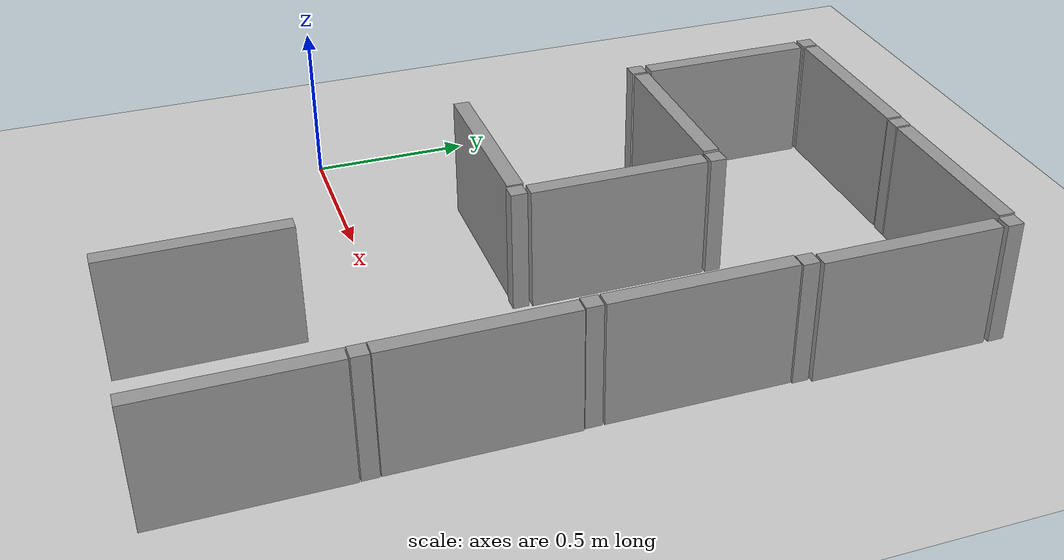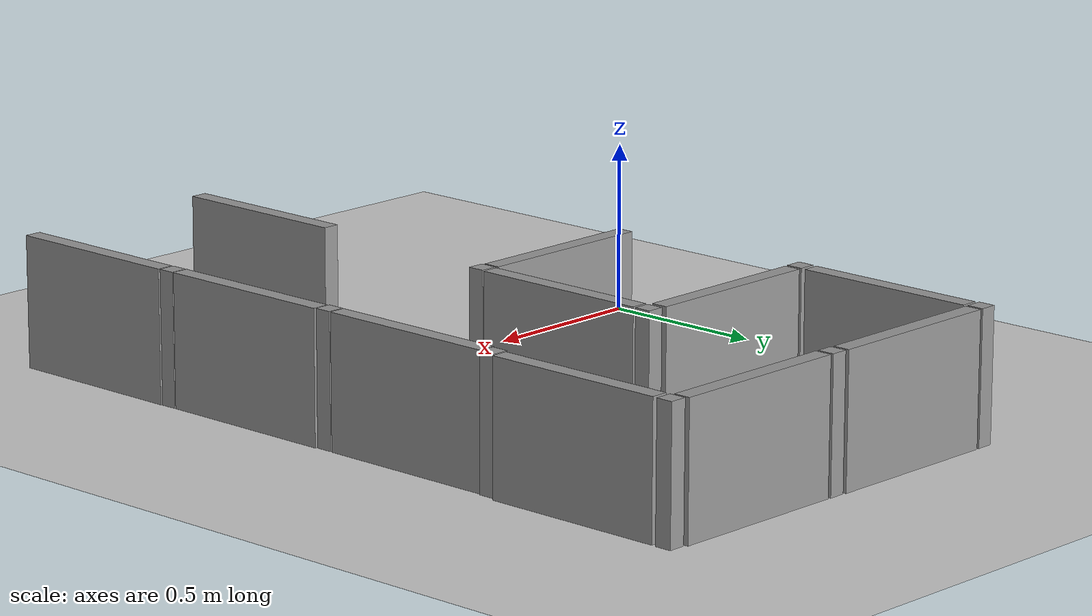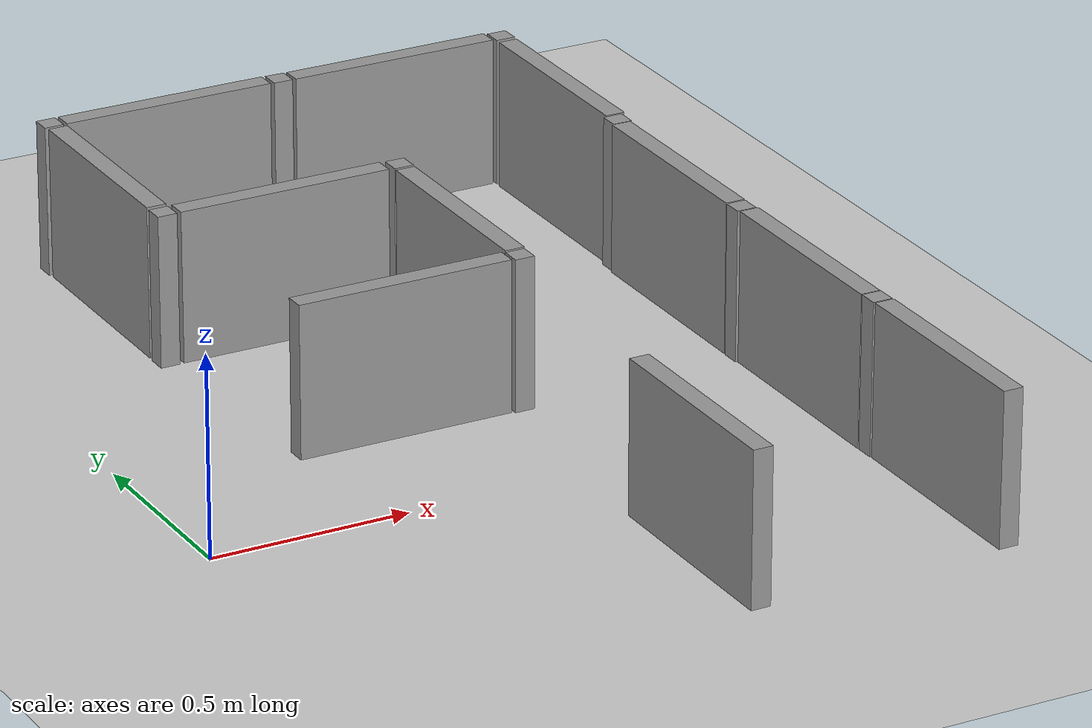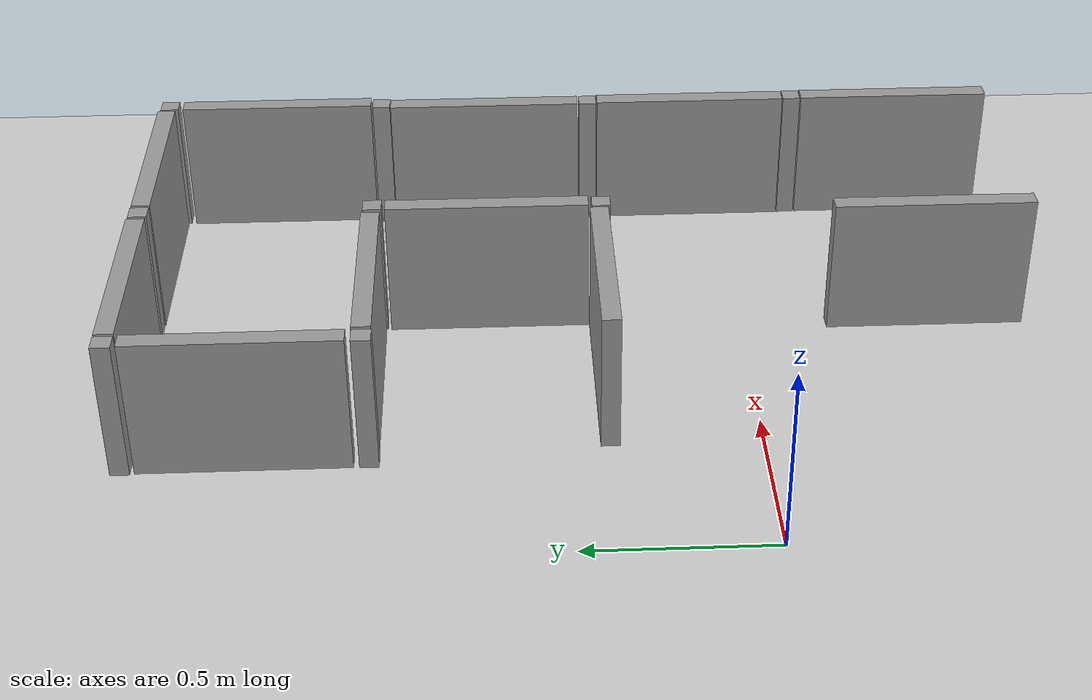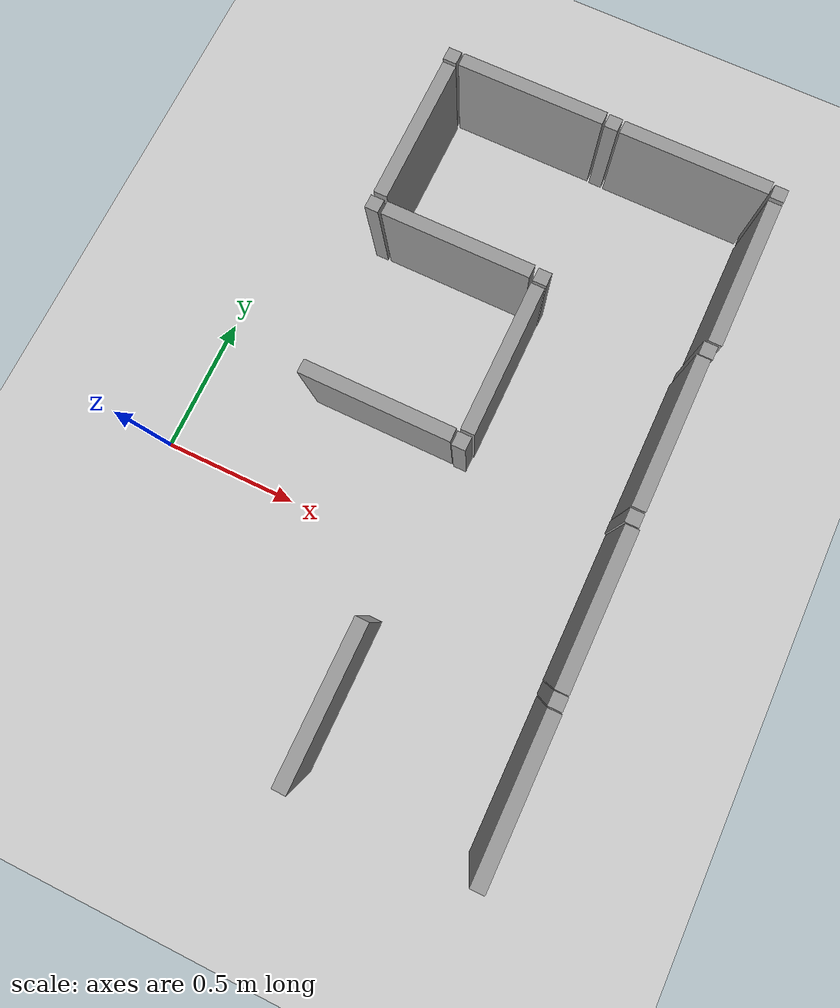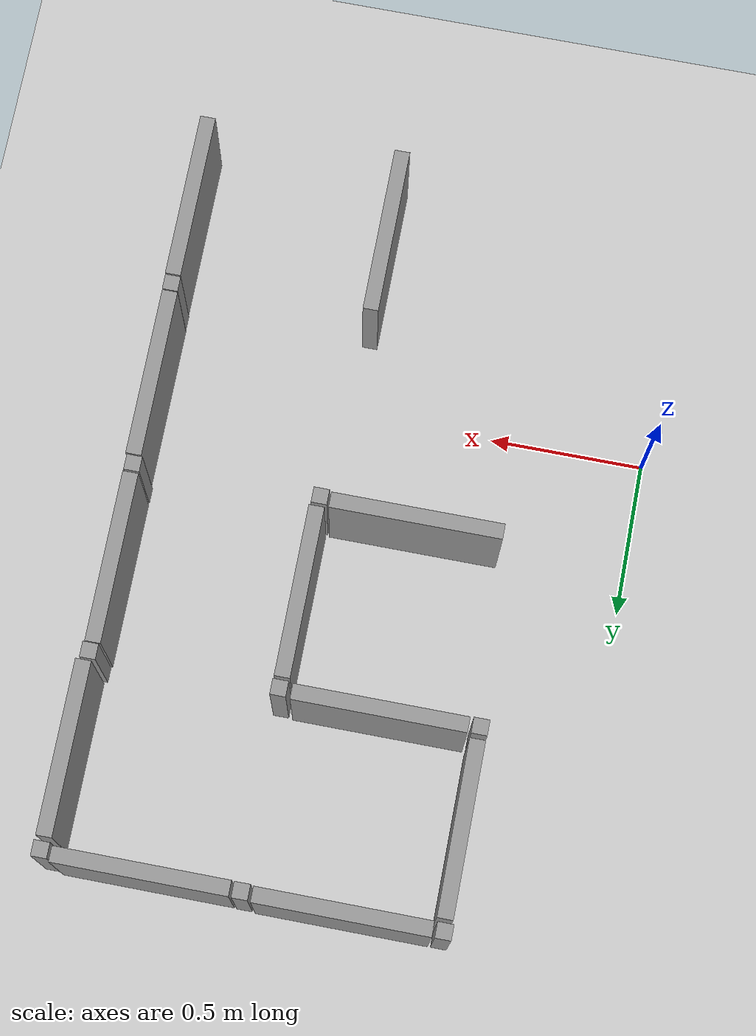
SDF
<sdf version="1.6">
 <world name="default">
  <model name="ground_plane">
   <static>1</static>
   <link name="link">
    <collision name="collision">
     <geometry><plane><normal>0 0 1</normal><size>100 100</size></plane></geometry>
     <surface>
      <contact><collide_bitmask>65535</collide_bitmask></contact>
      <friction><ode><mu>100</mu><mu2>50</mu2></ode></friction>
     </surface>
    </collision>
    <visual name="visual">
     <cast_shadows>0</cast_shadows>
     <geometry><plane><normal>0 0 1</normal><size>100 100</size></plane></geometry>
     <material>
      <script><uri>file://media/materials/scripts/gazebo.material</uri><name>Gazebo/Grey</name></script>
     </material>
    </visual>
   </link>
  </model>
  <model name="white_maze">
   <link name="link_0_clone_1_clone_0">
    <inertial>
     <mass>1</mass>
     <inertia>
      <ixx>0.166667</ixx>
      <ixy>0</ixy>
      <ixz>0</ixz>
      <iyy>0.166667</iyy>
      <iyz>0</iyz>
      <izz>0.166667</izz>
     </inertia>
    </inertial>
    <pose>1.21099 1.50565 0 0 -0 0</pose>
    <visual name="visual">
     <geometry><box><size>0.55 0.05 0.4</size></box></geometry>
     <material>
      <lighting>1</lighting>
      <script><uri>file://media/materials/scripts/gazebo.material</uri><name>Gazebo/Grey</name></script>
      <shader type="vertex"><normal_map>__default__</normal_map></shader>
      <ambient>1 1 1 1</ambient>
      <diffuse>0.7 0.7 0.7 1</diffuse>
      <specular>0.01 0.01 0.01 1</specular>
      <emissive>0 0 0 1</emissive>
     </material>
    </visual>
    <collision name="collision">
     <geometry><box><size>0.55 0.05 0.4</size></box></geometry>
     <surface>
      <friction>
       <ode><mu>1</mu><mu2>1</mu2><fdir1>0 0 0</fdir1><slip1>0</slip1><slip2>0</slip2></ode>
       <torsional>
        <coefficient>1</coefficient>
        <patch_radius>0</patch_radius>
        <surface_radius>0</surface_radius>
        <use_patch_radius>1</use_patch_radius>
        <ode><slip>0</slip></ode>
       </torsional>
      </friction>
      <bounce><restitution_coefficient>0</restitution_coefficient><threshold>1e+06</threshold></bounce>
      <contact>
       <collide_without_contact>0</collide_without_contact>
       <collide_without_contact_bitmask>1</collide_without_contact_bitmask>
       <collide_bitmask>1</collide_bitmask>
       <ode>
        <soft_cfm>0</soft_cfm>
        <soft_erp>0.2</soft_erp>
        <kp>1e+13</kp>
        <kd>1</kd>
        <max_vel>0.01</max_vel>
        <min_depth>0</min_depth>
       </ode>
       <bullet>
        <split_impulse>1</split_impulse>
        <split_impulse_penetration_threshold>-0.01</split_impulse_penetration_threshold>
        <soft_cfm>0</soft_cfm>
        <soft_erp>0.2</soft_erp>
        <kp>1e+13</kp>
        <kd>1</kd>
       </bullet>
      </contact>
     </surface>
    </collision>
   </link>
   <link name="link_0_clone_1_clone_1">
    <inertial>
     <mass>1</mass>
     <inertia>
      <ixx>0.166667</ixx>
      <ixy>0</ixy>
      <ixz>0</ixz>
      <iyy>0.166667</iyy>
      <iyz>0</iyz>
      <izz>0.166667</izz>
     </inertia>
    </inertial>
    <pose>0.593667 1.50999 0 0 -0 0</pose>
    <visual name="visual">
     <geometry><box><size>0.55 0.05 0.4</size></box></geometry>
     <material>
      <lighting>1</lighting>
      <script><uri>file://media/materials/scripts/gazebo.material</uri><name>Gazebo/Grey</name></script>
      <shader type="vertex"><normal_map>__default__</normal_map></shader>
      <ambient>1 1 1 1</ambient>
      <diffuse>0.7 0.7 0.7 1</diffuse>
      <specular>0.01 0.01 0.01 1</specular>
      <emissive>0 0 0 1</emissive>
     </material>
    </visual>
    <collision name="collision">
     <geometry><box><size>0.55 0.05 0.4</size></box></geometry>
     <surface>
      <friction>
       <ode><mu>1</mu><mu2>1</mu2><fdir1>0 0 0</fdir1><slip1>0</slip1><slip2>0</slip2></ode>
       <torsional>
        <coefficient>1</coefficient>
        <patch_radius>0</patch_radius>
        <surface_radius>0</surface_radius>
        <use_patch_radius>1</use_patch_radius>
        <ode><slip>0</slip></ode>
       </torsional>
      </friction>
      <bounce><restitution_coefficient>0</restitution_coefficient><threshold>1e+06</threshold></bounce>
      <contact>
       <collide_without_contact>0</collide_without_contact>
       <collide_without_contact_bitmask>1</collide_without_contact_bitmask>
       <collide_bitmask>1</collide_bitmask>
       <ode>
        <soft_cfm>0</soft_cfm>
        <soft_erp>0.2</soft_erp>
        <kp>1e+13</kp>
        <kd>1</kd>
        <max_vel>0.01</max_vel>
        <min_depth>0</min_depth>
       </ode>
       <bullet>
        <split_impulse>1</split_impulse>
        <split_impulse_penetration_threshold>-0.01</split_impulse_penetration_threshold>
        <soft_cfm>0</soft_cfm>
        <soft_erp>0.2</soft_erp>
        <kp>1e+13</kp>
        <kd>1</kd>
       </bullet>
      </contact>
     </surface>
    </collision>
   </link>
   <link name="link_0_clone_1_clone_clone">
    <inertial>
     <mass>1</mass>
     <inertia>
      <ixx>0.166667</ixx>
      <ixy>0</ixy>
      <ixz>0</ixz>
      <iyy>0.166667</iyy>
      <iyz>0</iyz>
      <izz>0.166667</izz>
     </inertia>
    </inertial>
    <pose>1.504 -0.640018 0 0 0 -1.57264</pose>
    <visual name="visual">
     <geometry><box><size>0.55 0.05 0.4</size></box></geometry>
     <material>
      <lighting>1</lighting>
      <script><uri>file://media/materials/scripts/gazebo.material</uri><name>Gazebo/Grey</name></script>
      <shader type="vertex"><normal_map>__default__</normal_map></shader>
      <ambient>1 1 1 1</ambient>
      <diffuse>0.7 0.7 0.7 1</diffuse>
      <specular>0.01 0.01 0.01 1</specular>
      <emissive>0 0 0 1</emissive>
     </material>
    </visual>
    <collision name="collision">
     <geometry><box><size>0.55 0.05 0.4</size></box></geometry>
     <surface>
      <friction>
       <ode><mu>1</mu><mu2>1</mu2><fdir1>0 0 0</fdir1><slip1>0</slip1><slip2>0</slip2></ode>
       <torsional>
        <coefficient>1</coefficient>
        <patch_radius>0</patch_radius>
        <surface_radius>0</surface_radius>
        <use_patch_radius>1</use_patch_radius>
        <ode><slip>0</slip></ode>
       </torsional>
      </friction>
      <bounce><restitution_coefficient>0</restitution_coefficient><threshold>1e+06</threshold></bounce>
      <contact>
       <collide_without_contact>0</collide_without_contact>
       <collide_without_contact_bitmask>1</collide_without_contact_bitmask>
       <collide_bitmask>1</collide_bitmask>
       <ode>
        <soft_cfm>0</soft_cfm>
        <soft_erp>0.2</soft_erp>
        <kp>1e+13</kp>
        <kd>1</kd>
        <max_vel>0.01</max_vel>
        <min_depth>0</min_depth>
       </ode>
       <bullet>
        <split_impulse>1</split_impulse>
        <split_impulse_penetration_threshold>-0.01</split_impulse_penetration_threshold>
        <soft_cfm>0</soft_cfm>
        <soft_erp>0.2</soft_erp>
        <kp>1e+13</kp>
        <kd>1</kd>
       </bullet>
      </contact>
     </surface>
    </collision>
   </link>
   <link name="link_0_clone_1_clone_clone_0">
    <inertial>
     <mass>1</mass>
     <inertia>
      <ixx>0.166667</ixx>
      <ixy>0</ixy>
      <ixz>0</ixz>
      <iyy>0.166667</iyy>
      <iyz>0</iyz>
      <izz>0.166667</izz>
     </inertia>
    </inertial>
    <pose>1.50232 -0.033133 0 0 0 -1.57264</pose>
    <visual name="visual">
     <geometry><box><size>0.55 0.05 0.4</size></box></geometry>
     <material>
      <lighting>1</lighting>
      <script><uri>file://media/materials/scripts/gazebo.material</uri><name>Gazebo/Grey</name></script>
      <shader type="vertex"><normal_map>__default__</normal_map></shader>
      <ambient>1 1 1 1</ambient>
      <diffuse>0.7 0.7 0.7 1</diffuse>
      <specular>0.01 0.01 0.01 1</specular>
      <emissive>0 0 0 1</emissive>
     </material>
    </visual>
    <collision name="collision">
     <geometry><box><size>0.55 0.05 0.4</size></box></geometry>
     <surface>
      <friction>
       <ode><mu>1</mu><mu2>1</mu2><fdir1>0 0 0</fdir1><slip1>0</slip1><slip2>0</slip2></ode>
       <torsional>
        <coefficient>1</coefficient>
        <patch_radius>0</patch_radius>
        <surface_radius>0</surface_radius>
        <use_patch_radius>1</use_patch_radius>
        <ode><slip>0</slip></ode>
       </torsional>
      </friction>
      <bounce><restitution_coefficient>0</restitution_coefficient><threshold>1e+06</threshold></bounce>
      <contact>
       <collide_without_contact>0</collide_without_contact>
       <collide_without_contact_bitmask>1</collide_without_contact_bitmask>
       <collide_bitmask>1</collide_bitmask>
       <ode>
        <soft_cfm>0</soft_cfm>
        <soft_erp>0.2</soft_erp>
        <kp>1e+13</kp>
        <kd>1</kd>
        <max_vel>0.01</max_vel>
        <min_depth>0</min_depth>
       </ode>
       <bullet>
        <split_impulse>1</split_impulse>
        <split_impulse_penetration_threshold>-0.01</split_impulse_penetration_threshold>
        <soft_cfm>0</soft_cfm>
        <soft_erp>0.2</soft_erp>
        <kp>1e+13</kp>
        <kd>1</kd>
       </bullet>
      </contact>
     </surface>
    </collision>
   </link>
   <link name="link_0_clone_1_clone_clone_1">
    <inertial>
     <mass>1</mass>
     <inertia>
      <ixx>0.166667</ixx>
      <ixy>0</ixy>
      <ixz>0</ixz>
      <iyy>0.166667</iyy>
      <iyz>0</iyz>
      <izz>0.166667</izz>
     </inertia>
    </inertial>
    <pose>1.49955 0.57556 0 0 0 -1.57264</pose>
    <visual name="visual">
     <geometry><box><size>0.55 0.05 0.4</size></box></geometry>
     <material>
      <lighting>1</lighting>
      <script><uri>file://media/materials/scripts/gazebo.material</uri><name>Gazebo/Grey</name></script>
      <shader type="vertex"><normal_map>__default__</normal_map></shader>
      <ambient>1 1 1 1</ambient>
      <diffuse>0.7 0.7 0.7 1</diffuse>
      <specular>0.01 0.01 0.01 1</specular>
      <emissive>0 0 0 1</emissive>
     </material>
    </visual>
    <collision name="collision">
     <geometry><box><size>0.55 0.05 0.4</size></box></geometry>
     <surface>
      <friction>
       <ode><mu>1</mu><mu2>1</mu2><fdir1>0 0 0</fdir1><slip1>0</slip1><slip2>0</slip2></ode>
       <torsional>
        <coefficient>1</coefficient>
        <patch_radius>0</patch_radius>
        <surface_radius>0</surface_radius>
        <use_patch_radius>1</use_patch_radius>
        <ode><slip>0</slip></ode>
       </torsional>
      </friction>
      <bounce><restitution_coefficient>0</restitution_coefficient><threshold>1e+06</threshold></bounce>
      <contact>
       <collide_without_contact>0</collide_without_contact>
       <collide_without_contact_bitmask>1</collide_without_contact_bitmask>
       <collide_bitmask>1</collide_bitmask>
       <ode>
        <soft_cfm>0</soft_cfm>
        <soft_erp>0.2</soft_erp>
        <kp>1e+13</kp>
        <kd>1</kd>
        <max_vel>0.01</max_vel>
        <min_depth>0</min_depth>
       </ode>
       <bullet>
        <split_impulse>1</split_impulse>
        <split_impulse_penetration_threshold>-0.01</split_impulse_penetration_threshold>
        <soft_cfm>0</soft_cfm>
        <soft_erp>0.2</soft_erp>
        <kp>1e+13</kp>
        <kd>1</kd>
       </bullet>
      </contact>
     </surface>
    </collision>
   </link>
   <link name="link_0_clone_1_clone_clone_1_clone_0_clone_clone_1">
    <inertial>
     <mass>1</mass>
     <inertia>
      <ixx>0.166667</ixx>
      <ixy>0</ixy>
      <ixz>0</ixz>
      <iyy>0.166667</iyy>
      <iyz>0</iyz>
      <izz>0.166667</izz>
     </inertia>
    </inertial>
    <pose>0.908057 0.57311 0 0 0 -1.57264</pose>
    <visual name="visual">
     <geometry><box><size>0.55 0.05 0.4</size></box></geometry>
     <material>
      <lighting>1</lighting>
      <script><uri>file://media/materials/scripts/gazebo.material</uri><name>Gazebo/Grey</name></script>
      <shader type="vertex"><normal_map>__default__</normal_map></shader>
      <ambient>1 1 1 1</ambient>
      <diffuse>0.7 0.7 0.7 1</diffuse>
      <specular>0.01 0.01 0.01 1</specular>
      <emissive>0 0 0 1</emissive>
     </material>
    </visual>
    <collision name="collision">
     <geometry><box><size>0.55 0.05 0.4</size></box></geometry>
     <surface>
      <friction>
       <ode><mu>1</mu><mu2>1</mu2><fdir1>0 0 0</fdir1><slip1>0</slip1><slip2>0</slip2></ode>
       <torsional>
        <coefficient>1</coefficient>
        <patch_radius>0</patch_radius>
        <surface_radius>0</surface_radius>
        <use_patch_radius>1</use_patch_radius>
        <ode><slip>0</slip></ode>
       </torsional>
      </friction>
      <bounce><restitution_coefficient>0</restitution_coefficient><threshold>1e+06</threshold></bounce>
      <contact>
       <collide_without_contact>0</collide_without_contact>
       <collide_without_contact_bitmask>1</collide_without_contact_bitmask>
       <collide_bitmask>1</collide_bitmask>
       <ode>
        <soft_cfm>0</soft_cfm>
        <soft_erp>0.2</soft_erp>
        <kp>1e+13</kp>
        <kd>1</kd>
        <max_vel>0.01</max_vel>
        <min_depth>0</min_depth>
       </ode>
       <bullet>
        <split_impulse>1</split_impulse>
        <split_impulse_penetration_threshold>-0.01</split_impulse_penetration_threshold>
        <soft_cfm>0</soft_cfm>
        <soft_erp>0.2</soft_erp>
        <kp>1e+13</kp>
        <kd>1</kd>
       </bullet>
      </contact>
     </surface>
    </collision>
   </link>
   <link name="link_0_clone_1_clone_clone_1_clone_0_clone_clone_2">
    <inertial>
     <mass>1</mass>
     <inertia>
      <ixx>0.166667</ixx>
      <ixy>0</ixy>
      <ixz>0</ixz>
      <iyy>0.166667</iyy>
      <iyz>0</iyz>
      <izz>0.166667</izz>
     </inertia>
    </inertial>
    <pose>0.28851 1.19873 0 0 0 -1.57264</pose>
    <visual name="visual">
     <geometry><box><size>0.55 0.05 0.4</size></box></geometry>
     <material>
      <lighting>1</lighting>
      <script><uri>file://media/materials/scripts/gazebo.material</uri><name>Gazebo/Grey</name></script>
      <shader type="vertex"><normal_map>__default__</normal_map></shader>
      <ambient>1 1 1 1</ambient>
      <diffuse>0.7 0.7 0.7 1</diffuse>
      <specular>0.01 0.01 0.01 1</specular>
      <emissive>0 0 0 1</emissive>
     </material>
    </visual>
    <collision name="collision">
     <geometry><box><size>0.55 0.05 0.4</size></box></geometry>
     <surface>
      <friction>
       <ode><mu>1</mu><mu2>1</mu2><fdir1>0 0 0</fdir1><slip1>0</slip1><slip2>0</slip2></ode>
       <torsional>
        <coefficient>1</coefficient>
        <patch_radius>0</patch_radius>
        <surface_radius>0</surface_radius>
        <use_patch_radius>1</use_patch_radius>
        <ode><slip>0</slip></ode>
       </torsional>
      </friction>
      <bounce><restitution_coefficient>0</restitution_coefficient><threshold>1e+06</threshold></bounce>
      <contact>
       <collide_without_contact>0</collide_without_contact>
       <collide_without_contact_bitmask>1</collide_without_contact_bitmask>
       <collide_bitmask>1</collide_bitmask>
       <ode>
        <soft_cfm>0</soft_cfm>
        <soft_erp>0.2</soft_erp>
        <kp>1e+13</kp>
        <kd>1</kd>
        <max_vel>0.01</max_vel>
        <min_depth>0</min_depth>
       </ode>
       <bullet>
        <split_impulse>1</split_impulse>
        <split_impulse_penetration_threshold>-0.01</split_impulse_penetration_threshold>
        <soft_cfm>0</soft_cfm>
        <soft_erp>0.2</soft_erp>
        <kp>1e+13</kp>
        <kd>1</kd>
       </bullet>
      </contact>
     </surface>
    </collision>
   </link>
   <link name="link_0_clone_1_clone_clone_2">
    <inertial>
     <mass>1</mass>
     <inertia>
      <ixx>0.166667</ixx>
      <ixy>0</ixy>
      <ixz>0</ixz>
      <iyy>0.166667</iyy>
      <iyz>0</iyz>
      <izz>0.166667</izz>
     </inertia>
    </inertial>
    <pose>1.51631 1.18395 0 0 0 -1.57264</pose>
    <visual name="visual">
     <geometry><box><size>0.55 0.05 0.4</size></box></geometry>
     <material>
      <lighting>1</lighting>
      <script><uri>file://media/materials/scripts/gazebo.material</uri><name>Gazebo/Grey</name></script>
      <shader type="vertex"><normal_map>__default__</normal_map></shader>
      <ambient>1 1 1 1</ambient>
      <diffuse>0.7 0.7 0.7 1</diffuse>
      <specular>0.01 0.01 0.01 1</specular>
      <emissive>0 0 0 1</emissive>
     </material>
    </visual>
    <collision name="collision">
     <geometry><box><size>0.55 0.05 0.4</size></box></geometry>
     <surface>
      <friction>
       <ode><mu>1</mu><mu2>1</mu2><fdir1>0 0 0</fdir1><slip1>0</slip1><slip2>0</slip2></ode>
       <torsional>
        <coefficient>1</coefficient>
        <patch_radius>0</patch_radius>
        <surface_radius>0</surface_radius>
        <use_patch_radius>1</use_patch_radius>
        <ode><slip>0</slip></ode>
       </torsional>
      </friction>
      <bounce><restitution_coefficient>0</restitution_coefficient><threshold>1e+06</threshold></bounce>
      <contact>
       <collide_without_contact>0</collide_without_contact>
       <collide_without_contact_bitmask>1</collide_without_contact_bitmask>
       <collide_bitmask>1</collide_bitmask>
       <ode>
        <soft_cfm>0</soft_cfm>
        <soft_erp>0.2</soft_erp>
        <kp>1e+13</kp>
        <kd>1</kd>
        <max_vel>0.01</max_vel>
        <min_depth>0</min_depth>
       </ode>
       <bullet>
        <split_impulse>1</split_impulse>
        <split_impulse_penetration_threshold>-0.01</split_impulse_penetration_threshold>
        <soft_cfm>0</soft_cfm>
        <soft_erp>0.2</soft_erp>
        <kp>1e+13</kp>
        <kd>1</kd>
       </bullet>
      </contact>
     </surface>
    </collision>
   </link>
   <link name="link_0_clone_1_clone_clone_3">
    <inertial>
     <mass>1</mass>
     <inertia>
      <ixx>0.166667</ixx>
      <ixy>0</ixy>
      <ixz>0</ixz>
      <iyy>0.166667</iyy>
      <iyz>0</iyz>
      <izz>0.166667</izz>
     </inertia>
    </inertial>
    <pose>0.862349 -0.641857 0 0 0 -1.57264</pose>
    <visual name="visual">
     <geometry><box><size>0.55 0.05 0.4</size></box></geometry>
     <material>
      <lighting>1</lighting>
      <script><uri>file://media/materials/scripts/gazebo.material</uri><name>Gazebo/Grey</name></script>
      <shader type="vertex"><normal_map>__default__</normal_map></shader>
      <ambient>1 1 1 1</ambient>
      <diffuse>0.7 0.7 0.7 1</diffuse>
      <specular>0.01 0.01 0.01 1</specular>
      <emissive>0 0 0 1</emissive>
     </material>
    </visual>
    <collision name="collision">
     <geometry><box><size>0.55 0.05 0.4</size></box></geometry>
     <surface>
      <friction>
       <ode><mu>1</mu><mu2>1</mu2><fdir1>0 0 0</fdir1><slip1>0</slip1><slip2>0</slip2></ode>
       <torsional>
        <coefficient>1</coefficient>
        <patch_radius>0</patch_radius>
        <surface_radius>0</surface_radius>
        <use_patch_radius>1</use_patch_radius>
        <ode><slip>0</slip></ode>
       </torsional>
      </friction>
      <bounce><restitution_coefficient>0</restitution_coefficient><threshold>1e+06</threshold></bounce>
      <contact>
       <collide_without_contact>0</collide_without_contact>
       <collide_without_contact_bitmask>1</collide_without_contact_bitmask>
       <collide_bitmask>1</collide_bitmask>
       <ode>
        <soft_cfm>0</soft_cfm>
        <soft_erp>0.2</soft_erp>
        <kp>1e+13</kp>
        <kd>1</kd>
        <max_vel>0.01</max_vel>
        <min_depth>0</min_depth>
       </ode>
       <bullet>
        <split_impulse>1</split_impulse>
        <split_impulse_penetration_threshold>-0.01</split_impulse_penetration_threshold>
        <soft_cfm>0</soft_cfm>
        <soft_erp>0.2</soft_erp>
        <kp>1e+13</kp>
        <kd>1</kd>
       </bullet>
      </contact>
     </surface>
    </collision>
   </link>
   <link name="link_0_clone_3_clone_0">
    <inertial>
     <mass>1</mass>
     <inertia>
      <ixx>0.166667</ixx>
      <ixy>0</ixy>
      <ixz>0</ixz>
      <iyy>0.166667</iyy>
      <iyz>0</iyz>
      <izz>0.166667</izz>
     </inertia>
    </inertial>
    <pose>0.595956 0.270304 0 0 -0 0</pose>
    <visual name="visual">
     <geometry><box><size>0.55 0.05 0.4</size></box></geometry>
     <material>
      <lighting>1</lighting>
      <script><uri>file://media/materials/scripts/gazebo.material</uri><name>Gazebo/Grey</name></script>
      <shader type="vertex"><normal_map>__default__</normal_map></shader>
      <ambient>1 1 1 1</ambient>
      <diffuse>0.7 0.7 0.7 1</diffuse>
      <specular>0.01 0.01 0.01 1</specular>
      <emissive>0 0 0 1</emissive>
     </material>
    </visual>
    <collision name="collision">
     <geometry><box><size>0.55 0.05 0.4</size></box></geometry>
     <surface>
      <friction>
       <ode><mu>1</mu><mu2>1</mu2><fdir1>0 0 0</fdir1><slip1>0</slip1><slip2>0</slip2></ode>
       <torsional>
        <coefficient>1</coefficient>
        <patch_radius>0</patch_radius>
        <surface_radius>0</surface_radius>
        <use_patch_radius>1</use_patch_radius>
        <ode><slip>0</slip></ode>
       </torsional>
      </friction>
      <bounce><restitution_coefficient>0</restitution_coefficient><threshold>1e+06</threshold></bounce>
      <contact>
       <collide_without_contact>0</collide_without_contact>
       <collide_without_contact_bitmask>1</collide_without_contact_bitmask>
       <collide_bitmask>1</collide_bitmask>
       <ode>
        <soft_cfm>0</soft_cfm>
        <soft_erp>0.2</soft_erp>
        <kp>1e+13</kp>
        <kd>1</kd>
        <max_vel>0.01</max_vel>
        <min_depth>0</min_depth>
       </ode>
       <bullet>
        <split_impulse>1</split_impulse>
        <split_impulse_penetration_threshold>-0.01</split_impulse_penetration_threshold>
        <soft_cfm>0</soft_cfm>
        <soft_erp>0.2</soft_erp>
        <kp>1e+13</kp>
        <kd>1</kd>
       </bullet>
      </contact>
     </surface>
    </collision>
   </link>
   <link name="link_0_clone_3_clone_1">
    <inertial>
     <mass>1</mass>
     <inertia>
      <ixx>0.166667</ixx>
      <ixy>0</ixy>
      <ixz>0</ixz>
      <iyy>0.166667</iyy>
      <iyz>0</iyz>
      <izz>0.166667</izz>
     </inertia>
    </inertial>
    <pose>0.596703 0.885939 0 0 -0 0</pose>
    <visual name="visual">
     <geometry><box><size>0.55 0.05 0.4</size></box></geometry>
     <material>
      <lighting>1</lighting>
      <script><uri>file://media/materials/scripts/gazebo.material</uri><name>Gazebo/Grey</name></script>
      <shader type="vertex"><normal_map>__default__</normal_map></shader>
      <ambient>1 1 1 1</ambient>
      <diffuse>0.7 0.7 0.7 1</diffuse>
      <specular>0.01 0.01 0.01 1</specular>
      <emissive>0 0 0 1</emissive>
     </material>
    </visual>
    <collision name="collision">
     <geometry><box><size>0.55 0.05 0.4</size></box></geometry>
     <surface>
      <friction>
       <ode><mu>1</mu><mu2>1</mu2><fdir1>0 0 0</fdir1><slip1>0</slip1><slip2>0</slip2></ode>
       <torsional>
        <coefficient>1</coefficient>
        <patch_radius>0</patch_radius>
        <surface_radius>0</surface_radius>
        <use_patch_radius>1</use_patch_radius>
        <ode><slip>0</slip></ode>
       </torsional>
      </friction>
      <bounce><restitution_coefficient>0</restitution_coefficient><threshold>1e+06</threshold></bounce>
      <contact>
       <collide_without_contact>0</collide_without_contact>
       <collide_without_contact_bitmask>1</collide_without_contact_bitmask>
       <collide_bitmask>1</collide_bitmask>
       <ode>
        <soft_cfm>0</soft_cfm>
        <soft_erp>0.2</soft_erp>
        <kp>1e+13</kp>
        <kd>1</kd>
        <max_vel>0.01</max_vel>
        <min_depth>0</min_depth>
       </ode>
       <bullet>
        <split_impulse>1</split_impulse>
        <split_impulse_penetration_threshold>-0.01</split_impulse_penetration_threshold>
        <soft_cfm>0</soft_cfm>
        <soft_erp>0.2</soft_erp>
        <kp>1e+13</kp>
        <kd>1</kd>
       </bullet>
      </contact>
     </surface>
    </collision>
   </link>
   <link name="link_1_clone_3_clone">
    <inertial>
     <mass>1</mass>
     <inertia>
      <ixx>0.166667</ixx>
      <ixy>0</ixy>
      <ixz>0</ixz>
      <iyy>0.166667</iyy>
      <iyz>0</iyz>
      <izz>0.166667</izz>
     </inertia>
    </inertial>
    <pose>1.5027 -0.335933 0 0 -0 0</pose>
    <visual name="visual">
     <geometry><box><size>0.05 0.05 0.4</size></box></geometry>
     <material>
      <lighting>1</lighting>
      <script><uri>file://media/materials/scripts/gazebo.material</uri><name>Gazebo/Grey</name></script>
      <shader type="vertex"><normal_map>__default__</normal_map></shader>
      <ambient>0.3 0.3 0.3 1</ambient>
      <diffuse>0.7 0.7 0.7 1</diffuse>
      <specular>0.01 0.01 0.01 1</specular>
      <emissive>0 0 0 1</emissive>
     </material>
    </visual>
    <collision name="collision">
     <geometry><box><size>0.05 0.05 0.4</size></box></geometry>
     <surface>
      <friction>
       <ode><mu>1</mu><mu2>1</mu2><fdir1>0 0 0</fdir1><slip1>0</slip1><slip2>0</slip2></ode>
       <torsional>
        <coefficient>1</coefficient>
        <patch_radius>0</patch_radius>
        <surface_radius>0</surface_radius>
        <use_patch_radius>1</use_patch_radius>
        <ode><slip>0</slip></ode>
       </torsional>
      </friction>
      <bounce><restitution_coefficient>0</restitution_coefficient><threshold>1e+06</threshold></bounce>
      <contact>
       <collide_without_contact>0</collide_without_contact>
       <collide_without_contact_bitmask>1</collide_without_contact_bitmask>
       <collide_bitmask>1</collide_bitmask>
       <ode>
        <soft_cfm>0</soft_cfm>
        <soft_erp>0.2</soft_erp>
        <kp>1e+13</kp>
        <kd>1</kd>
        <max_vel>0.01</max_vel>
        <min_depth>0</min_depth>
       </ode>
       <bullet>
        <split_impulse>1</split_impulse>
        <split_impulse_penetration_threshold>-0.01</split_impulse_penetration_threshold>
        <soft_cfm>0</soft_cfm>
        <soft_erp>0.2</soft_erp>
        <kp>1e+13</kp>
        <kd>1</kd>
       </bullet>
      </contact>
     </surface>
    </collision>
   </link>
   <link name="link_1_clone_3_clone_0">
    <inertial>
     <mass>1</mass>
     <inertia>
      <ixx>0.166667</ixx>
      <ixy>0</ixy>
      <ixz>0</ixz>
      <iyy>0.166667</iyy>
      <iyz>0</iyz>
      <izz>0.166667</izz>
     </inertia>
    </inertial>
    <pose>1.49791 0.270273 0 0 -0 0</pose>
    <visual name="visual">
     <geometry><box><size>0.05 0.05 0.4</size></box></geometry>
     <material>
      <lighting>1</lighting>
      <script><uri>file://media/materials/scripts/gazebo.material</uri><name>Gazebo/Grey</name></script>
      <shader type="vertex"><normal_map>__default__</normal_map></shader>
      <ambient>0.3 0.3 0.3 1</ambient>
      <diffuse>0.7 0.7 0.7 1</diffuse>
      <specular>0.01 0.01 0.01 1</specular>
      <emissive>0 0 0 1</emissive>
     </material>
    </visual>
    <collision name="collision">
     <geometry><box><size>0.05 0.05 0.4</size></box></geometry>
     <surface>
      <friction>
       <ode><mu>1</mu><mu2>1</mu2><fdir1>0 0 0</fdir1><slip1>0</slip1><slip2>0</slip2></ode>
       <torsional>
        <coefficient>1</coefficient>
        <patch_radius>0</patch_radius>
        <surface_radius>0</surface_radius>
        <use_patch_radius>1</use_patch_radius>
        <ode><slip>0</slip></ode>
       </torsional>
      </friction>
      <bounce><restitution_coefficient>0</restitution_coefficient><threshold>1e+06</threshold></bounce>
      <contact>
       <collide_without_contact>0</collide_without_contact>
       <collide_without_contact_bitmask>1</collide_without_contact_bitmask>
       <collide_bitmask>1</collide_bitmask>
       <ode>
        <soft_cfm>0</soft_cfm>
        <soft_erp>0.2</soft_erp>
        <kp>1e+13</kp>
        <kd>1</kd>
        <max_vel>0.01</max_vel>
        <min_depth>0</min_depth>
       </ode>
       <bullet>
        <split_impulse>1</split_impulse>
        <split_impulse_penetration_threshold>-0.01</split_impulse_penetration_threshold>
        <soft_cfm>0</soft_cfm>
        <soft_erp>0.2</soft_erp>
        <kp>1e+13</kp>
        <kd>1</kd>
       </bullet>
      </contact>
     </surface>
    </collision>
   </link>
   <link name="link_1_clone_3_clone_1">
    <inertial>
     <mass>1</mass>
     <inertia>
      <ixx>0.166667</ixx>
      <ixy>0</ixy>
      <ixz>0</ixz>
      <iyy>0.166667</iyy>
      <iyz>0</iyz>
      <izz>0.166667</izz>
     </inertia>
    </inertial>
    <pose>1.50496 0.877967 0 0 -0 0</pose>
    <visual name="visual">
     <geometry><box><size>0.05 0.05 0.4</size></box></geometry>
     <material>
      <lighting>1</lighting>
      <script><uri>file://media/materials/scripts/gazebo.material</uri><name>Gazebo/Grey</name></script>
      <shader type="vertex"><normal_map>__default__</normal_map></shader>
      <ambient>0.3 0.3 0.3 1</ambient>
      <diffuse>0.7 0.7 0.7 1</diffuse>
      <specular>0.01 0.01 0.01 1</specular>
      <emissive>0 0 0 1</emissive>
     </material>
    </visual>
    <collision name="collision">
     <geometry><box><size>0.05 0.05 0.4</size></box></geometry>
     <surface>
      <friction>
       <ode><mu>1</mu><mu2>1</mu2><fdir1>0 0 0</fdir1><slip1>0</slip1><slip2>0</slip2></ode>
       <torsional>
        <coefficient>1</coefficient>
        <patch_radius>0</patch_radius>
        <surface_radius>0</surface_radius>
        <use_patch_radius>1</use_patch_radius>
        <ode><slip>0</slip></ode>
       </torsional>
      </friction>
      <bounce><restitution_coefficient>0</restitution_coefficient><threshold>1e+06</threshold></bounce>
      <contact>
       <collide_without_contact>0</collide_without_contact>
       <collide_without_contact_bitmask>1</collide_without_contact_bitmask>
       <collide_bitmask>1</collide_bitmask>
       <ode>
        <soft_cfm>0</soft_cfm>
        <soft_erp>0.2</soft_erp>
        <kp>1e+13</kp>
        <kd>1</kd>
        <max_vel>0.01</max_vel>
        <min_depth>0</min_depth>
       </ode>
       <bullet>
        <split_impulse>1</split_impulse>
        <split_impulse_penetration_threshold>-0.01</split_impulse_penetration_threshold>
        <soft_cfm>0</soft_cfm>
        <soft_erp>0.2</soft_erp>
        <kp>1e+13</kp>
        <kd>1</kd>
       </bullet>
      </contact>
     </surface>
    </collision>
   </link>
   <link name="link_1_clone_3_clone_2">
    <inertial>
     <mass>1</mass>
     <inertia>
      <ixx>0.166667</ixx>
      <ixy>0</ixy>
      <ixz>0</ixz>
      <iyy>0.166667</iyy>
      <iyz>0</iyz>
      <izz>0.166667</izz>
     </inertia>
    </inertial>
    <pose>1.51848 1.49787 0 0 -0 0</pose>
    <visual name="visual">
     <geometry><box><size>0.05 0.05 0.4</size></box></geometry>
     <material>
      <lighting>1</lighting>
      <script><uri>file://media/materials/scripts/gazebo.material</uri><name>Gazebo/Grey</name></script>
      <shader type="vertex"><normal_map>__default__</normal_map></shader>
      <ambient>0.3 0.3 0.3 1</ambient>
      <diffuse>0.7 0.7 0.7 1</diffuse>
      <specular>0.01 0.01 0.01 1</specular>
      <emissive>0 0 0 1</emissive>
     </material>
    </visual>
    <collision name="collision">
     <geometry><box><size>0.05 0.05 0.4</size></box></geometry>
     <surface>
      <friction>
       <ode><mu>1</mu><mu2>1</mu2><fdir1>0 0 0</fdir1><slip1>0</slip1><slip2>0</slip2></ode>
       <torsional>
        <coefficient>1</coefficient>
        <patch_radius>0</patch_radius>
        <surface_radius>0</surface_radius>
        <use_patch_radius>1</use_patch_radius>
        <ode><slip>0</slip></ode>
       </torsional>
      </friction>
      <bounce><restitution_coefficient>0</restitution_coefficient><threshold>1e+06</threshold></bounce>
      <contact>
       <collide_without_contact>0</collide_without_contact>
       <collide_without_contact_bitmask>1</collide_without_contact_bitmask>
       <collide_bitmask>1</collide_bitmask>
       <ode>
        <soft_cfm>0</soft_cfm>
        <soft_erp>0.2</soft_erp>
        <kp>1e+13</kp>
        <kd>1</kd>
        <max_vel>0.01</max_vel>
        <min_depth>0</min_depth>
       </ode>
       <bullet>
        <split_impulse>1</split_impulse>
        <split_impulse_penetration_threshold>-0.01</split_impulse_penetration_threshold>
        <soft_cfm>0</soft_cfm>
        <soft_erp>0.2</soft_erp>
        <kp>1e+13</kp>
        <kd>1</kd>
       </bullet>
      </contact>
     </surface>
    </collision>
   </link>
   <link name="link_1_clone_3_clone_2_clone">
    <inertial>
     <mass>1</mass>
     <inertia>
      <ixx>0.166667</ixx>
      <ixy>0</ixy>
      <ixz>0</ixz>
      <iyy>0.166667</iyy>
      <iyz>0</iyz>
      <izz>0.166667</izz>
     </inertia>
    </inertial>
    <pose>0.902701 1.50694 0 0 -0 0</pose>
    <visual name="visual">
     <geometry><box><size>0.05 0.05 0.4</size></box></geometry>
     <material>
      <lighting>1</lighting>
      <script><uri>file://media/materials/scripts/gazebo.material</uri><name>Gazebo/Grey</name></script>
      <shader type="vertex"><normal_map>__default__</normal_map></shader>
      <ambient>0.3 0.3 0.3 1</ambient>
      <diffuse>0.7 0.7 0.7 1</diffuse>
      <specular>0.01 0.01 0.01 1</specular>
      <emissive>0 0 0 1</emissive>
     </material>
    </visual>
    <collision name="collision">
     <geometry><box><size>0.05 0.05 0.4</size></box></geometry>
     <surface>
      <friction>
       <ode><mu>1</mu><mu2>1</mu2><fdir1>0 0 0</fdir1><slip1>0</slip1><slip2>0</slip2></ode>
       <torsional>
        <coefficient>1</coefficient>
        <patch_radius>0</patch_radius>
        <surface_radius>0</surface_radius>
        <use_patch_radius>1</use_patch_radius>
        <ode><slip>0</slip></ode>
       </torsional>
      </friction>
      <bounce><restitution_coefficient>0</restitution_coefficient><threshold>1e+06</threshold></bounce>
      <contact>
       <collide_without_contact>0</collide_without_contact>
       <collide_without_contact_bitmask>1</collide_without_contact_bitmask>
       <collide_bitmask>1</collide_bitmask>
       <ode>
        <soft_cfm>0</soft_cfm>
        <soft_erp>0.2</soft_erp>
        <kp>1e+13</kp>
        <kd>1</kd>
        <max_vel>0.01</max_vel>
        <min_depth>0</min_depth>
       </ode>
       <bullet>
        <split_impulse>1</split_impulse>
        <split_impulse_penetration_threshold>-0.01</split_impulse_penetration_threshold>
        <soft_cfm>0</soft_cfm>
        <soft_erp>0.2</soft_erp>
        <kp>1e+13</kp>
        <kd>1</kd>
       </bullet>
      </contact>
     </surface>
    </collision>
   </link>
   <link name="link_1_clone_3_clone_2_clone_0">
    <inertial>
     <mass>1</mass>
     <inertia>
      <ixx>0.166667</ixx>
      <ixy>0</ixy>
      <ixz>0</ixz>
      <iyy>0.166667</iyy>
      <iyz>0</iyz>
      <izz>0.166667</izz>
     </inertia>
    </inertial>
    <pose>0.284536 1.50954 0 0 -0 0</pose>
    <visual name="visual">
     <geometry><box><size>0.05 0.05 0.4</size></box></geometry>
     <material>
      <lighting>1</lighting>
      <script><uri>file://media/materials/scripts/gazebo.material</uri><name>Gazebo/Grey</name></script>
      <shader type="vertex"><normal_map>__default__</normal_map></shader>
      <ambient>0.3 0.3 0.3 1</ambient>
      <diffuse>0.7 0.7 0.7 1</diffuse>
      <specular>0.01 0.01 0.01 1</specular>
      <emissive>0 0 0 1</emissive>
     </material>
    </visual>
    <collision name="collision">
     <geometry><box><size>0.05 0.05 0.4</size></box></geometry>
     <surface>
      <friction>
       <ode><mu>1</mu><mu2>1</mu2><fdir1>0 0 0</fdir1><slip1>0</slip1><slip2>0</slip2></ode>
       <torsional>
        <coefficient>1</coefficient>
        <patch_radius>0</patch_radius>
        <surface_radius>0</surface_radius>
        <use_patch_radius>1</use_patch_radius>
        <ode><slip>0</slip></ode>
       </torsional>
      </friction>
      <bounce><restitution_coefficient>0</restitution_coefficient><threshold>1e+06</threshold></bounce>
      <contact>
       <collide_without_contact>0</collide_without_contact>
       <collide_without_contact_bitmask>1</collide_without_contact_bitmask>
       <collide_bitmask>1</collide_bitmask>
       <ode>
        <soft_cfm>0</soft_cfm>
        <soft_erp>0.2</soft_erp>
        <kp>1e+13</kp>
        <kd>1</kd>
        <max_vel>0.01</max_vel>
        <min_depth>0</min_depth>
       </ode>
       <bullet>
        <split_impulse>1</split_impulse>
        <split_impulse_penetration_threshold>-0.01</split_impulse_penetration_threshold>
        <soft_cfm>0</soft_cfm>
        <soft_erp>0.2</soft_erp>
        <kp>1e+13</kp>
        <kd>1</kd>
       </bullet>
      </contact>
     </surface>
    </collision>
   </link>
   <link name="link_1_clone_3_clone_2_clone_6_clone_0">
    <inertial>
     <mass>1</mass>
     <inertia>
      <ixx>0.166667</ixx>
      <ixy>0</ixy>
      <ixz>0</ixz>
      <iyy>0.166667</iyy>
      <iyz>0</iyz>
      <izz>0.166667</izz>
     </inertia>
    </inertial>
    <pose>0.902681 0.264357 0 0 -0 0</pose>
    <visual name="visual">
     <geometry><box><size>0.05 0.05 0.4</size></box></geometry>
     <material>
      <lighting>1</lighting>
      <script><uri>file://media/materials/scripts/gazebo.material</uri><name>Gazebo/Grey</name></script>
      <shader type="vertex"><normal_map>__default__</normal_map></shader>
      <ambient>0.3 0.3 0.3 1</ambient>
      <diffuse>0.7 0.7 0.7 1</diffuse>
      <specular>0.01 0.01 0.01 1</specular>
      <emissive>0 0 0 1</emissive>
     </material>
    </visual>
    <collision name="collision">
     <geometry><box><size>0.05 0.05 0.4</size></box></geometry>
     <surface>
      <friction>
       <ode><mu>1</mu><mu2>1</mu2><fdir1>0 0 0</fdir1><slip1>0</slip1><slip2>0</slip2></ode>
       <torsional>
        <coefficient>1</coefficient>
        <patch_radius>0</patch_radius>
        <surface_radius>0</surface_radius>
        <use_patch_radius>1</use_patch_radius>
        <ode><slip>0</slip></ode>
       </torsional>
      </friction>
      <bounce><restitution_coefficient>0</restitution_coefficient><threshold>1e+06</threshold></bounce>
      <contact>
       <collide_without_contact>0</collide_without_contact>
       <collide_without_contact_bitmask>1</collide_without_contact_bitmask>
       <collide_bitmask>1</collide_bitmask>
       <ode>
        <soft_cfm>0</soft_cfm>
        <soft_erp>0.2</soft_erp>
        <kp>1e+13</kp>
        <kd>1</kd>
        <max_vel>0.01</max_vel>
        <min_depth>0</min_depth>
       </ode>
       <bullet>
        <split_impulse>1</split_impulse>
        <split_impulse_penetration_threshold>-0.01</split_impulse_penetration_threshold>
        <soft_cfm>0</soft_cfm>
        <soft_erp>0.2</soft_erp>
        <kp>1e+13</kp>
        <kd>1</kd>
       </bullet>
      </contact>
     </surface>
    </collision>
   </link>
   <link name="link_1_clone_3_clone_2_clone_6_clone_1">
    <inertial>
     <mass>1</mass>
     <inertia>
      <ixx>0.166667</ixx>
      <ixy>0</ixy>
      <ixz>0</ixz>
      <iyy>0.166667</iyy>
      <iyz>0</iyz>
      <izz>0.166667</izz>
     </inertia>
    </inertial>
    <pose>0.91039 0.882147 0 0 -0 0</pose>
    <visual name="visual">
     <geometry><box><size>0.05 0.05 0.4</size></box></geometry>
     <material>
      <lighting>1</lighting>
      <script><uri>file://media/materials/scripts/gazebo.material</uri><name>Gazebo/Grey</name></script>
      <shader type="vertex"><normal_map>__default__</normal_map></shader>
      <ambient>0.3 0.3 0.3 1</ambient>
      <diffuse>0.7 0.7 0.7 1</diffuse>
      <specular>0.01 0.01 0.01 1</specular>
      <emissive>0 0 0 1</emissive>
     </material>
    </visual>
    <collision name="collision">
     <geometry><box><size>0.05 0.05 0.4</size></box></geometry>
     <surface>
      <friction>
       <ode><mu>1</mu><mu2>1</mu2><fdir1>0 0 0</fdir1><slip1>0</slip1><slip2>0</slip2></ode>
       <torsional>
        <coefficient>1</coefficient>
        <patch_radius>0</patch_radius>
        <surface_radius>0</surface_radius>
        <use_patch_radius>1</use_patch_radius>
        <ode><slip>0</slip></ode>
       </torsional>
      </friction>
      <bounce><restitution_coefficient>0</restitution_coefficient><threshold>1e+06</threshold></bounce>
      <contact>
       <collide_without_contact>0</collide_without_contact>
       <collide_without_contact_bitmask>1</collide_without_contact_bitmask>
       <collide_bitmask>1</collide_bitmask>
       <ode>
        <soft_cfm>0</soft_cfm>
        <soft_erp>0.2</soft_erp>
        <kp>1e+13</kp>
        <kd>1</kd>
        <max_vel>0.01</max_vel>
        <min_depth>0</min_depth>
       </ode>
       <bullet>
        <split_impulse>1</split_impulse>
        <split_impulse_penetration_threshold>-0.01</split_impulse_penetration_threshold>
        <soft_cfm>0</soft_cfm>
        <soft_erp>0.2</soft_erp>
        <kp>1e+13</kp>
        <kd>1</kd>
       </bullet>
      </contact>
     </surface>
    </collision>
   </link>
   <link name="link_1_clone_3_clone_2_clone_6_clone_2">
    <inertial>
     <mass>1</mass>
     <inertia>
      <ixx>0.166667</ixx>
      <ixy>0</ixy>
      <ixz>0</ixz>
      <iyy>0.166667</iyy>
      <iyz>0</iyz>
      <izz>0.166667</izz>
     </inertia>
    </inertial>
    <pose>0.28595 0.884265 0 0 -0 0</pose>
    <visual name="visual">
     <geometry><box><size>0.05 0.05 0.4</size></box></geometry>
     <material>
      <lighting>1</lighting>
      <script><uri>file://media/materials/scripts/gazebo.material</uri><name>Gazebo/Grey</name></script>
      <shader type="vertex"><normal_map>__default__</normal_map></shader>
      <ambient>0.3 0.3 0.3 1</ambient>
      <diffuse>0.7 0.7 0.7 1</diffuse>
      <specular>0.01 0.01 0.01 1</specular>
      <emissive>0 0 0 1</emissive>
     </material>
    </visual>
    <collision name="collision">
     <geometry><box><size>0.05 0.05 0.4</size></box></geometry>
     <surface>
      <friction>
       <ode><mu>1</mu><mu2>1</mu2><fdir1>0 0 0</fdir1><slip1>0</slip1><slip2>0</slip2></ode>
       <torsional>
        <coefficient>1</coefficient>
        <patch_radius>0</patch_radius>
        <surface_radius>0</surface_radius>
        <use_patch_radius>1</use_patch_radius>
        <ode><slip>0</slip></ode>
       </torsional>
      </friction>
      <bounce><restitution_coefficient>0</restitution_coefficient><threshold>1e+06</threshold></bounce>
      <contact>
       <collide_without_contact>0</collide_without_contact>
       <collide_without_contact_bitmask>1</collide_without_contact_bitmask>
       <collide_bitmask>1</collide_bitmask>
       <ode>
        <soft_cfm>0</soft_cfm>
        <soft_erp>0.2</soft_erp>
        <kp>1e+13</kp>
        <kd>1</kd>
        <max_vel>0.01</max_vel>
        <min_depth>0</min_depth>
       </ode>
       <bullet>
        <split_impulse>1</split_impulse>
        <split_impulse_penetration_threshold>-0.01</split_impulse_penetration_threshold>
        <soft_cfm>0</soft_cfm>
        <soft_erp>0.2</soft_erp>
        <kp>1e+13</kp>
        <kd>1</kd>
       </bullet>
      </contact>
     </surface>
    </collision>
   </link>
   <static>1</static>
   <pose>0.092452 0.125309 0.185085 0 -0 0</pose>
  </model>
 </world>
</sdf>
